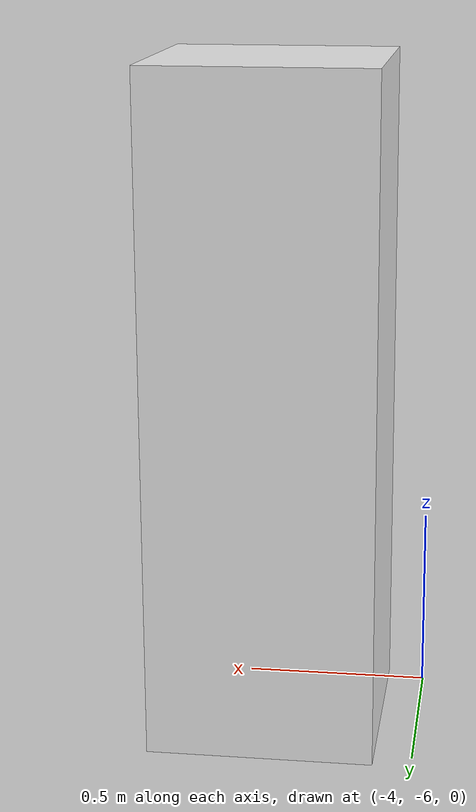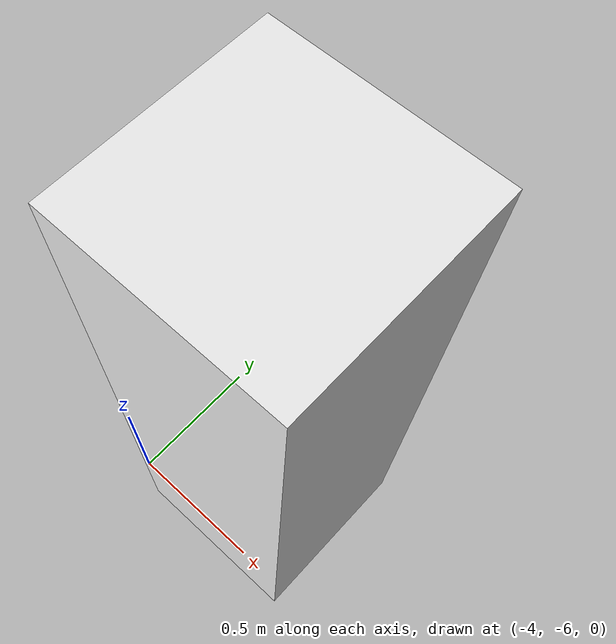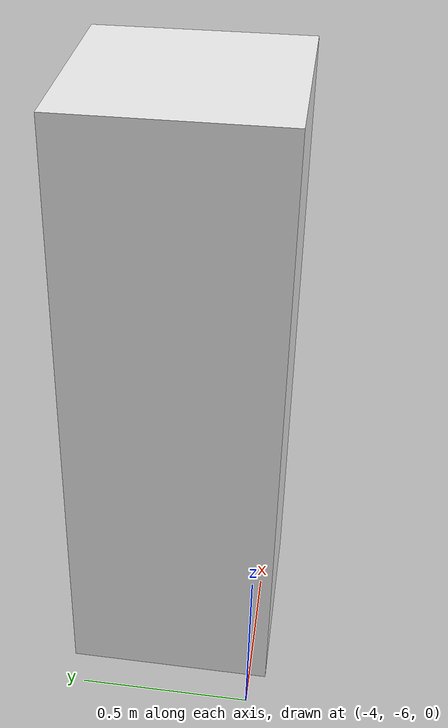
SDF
<?xml version="1.0" ?>
<sdf version='1.4'>
  <model name='frigo'>
    <link name='frigo_link'>
      <pose>0 0 0 0 -0 0</pose>
      <inertial>
        <pose>0 0 0.9 0 -0 0</pose>
        <mass>50</mass>
        <inertia>
          <ixx>5</ixx>
          <ixy>0</ixy>
          <ixz>0</ixz>
          <iyy>5</iyy>
          <iyz>0</iyz>
          <izz>5</izz>
        </inertia>
      </inertial>
      <collision name='frigo_link_collision'>
        <pose>0 0 0.9 0 -0 0</pose>
        <geometry>
          <box>
            <size>0.6 0.6 1.8</size>
          </box>
        </geometry>
        <surface>
          <contact>
            <ode/>
          </contact>
          <friction>
            <ode>
              <mu>100</mu>
              <mu2>100</mu2>
            </ode>
          </friction>
          <bounce/>
        </surface>
        <max_contacts>10</max_contacts>
      </collision>
      <visual name='frigo_link_visual'>
        <pose>0 0 0.9 0 -0 0</pose>
        <geometry>
          <box>
            <size>0.6 0.6 1.8</size>
          </box>
        </geometry>
        <material>
          <script>
            <name>Gazebo/White</name>
            <uri>__default__</uri>
          </script>
        </material>
      </visual>
      <gravity>1</gravity>
      <velocity_decay>
        <linear>0</linear>
        <angular>0</angular>
      </velocity_decay>
      <self_collide>1</self_collide>
      <kinematic>0</kinematic>
    </link>
    <pose>-3.6 -5.75 0 0 -0 0</pose>
    <static>0</static>
  </model>
</sdf>
